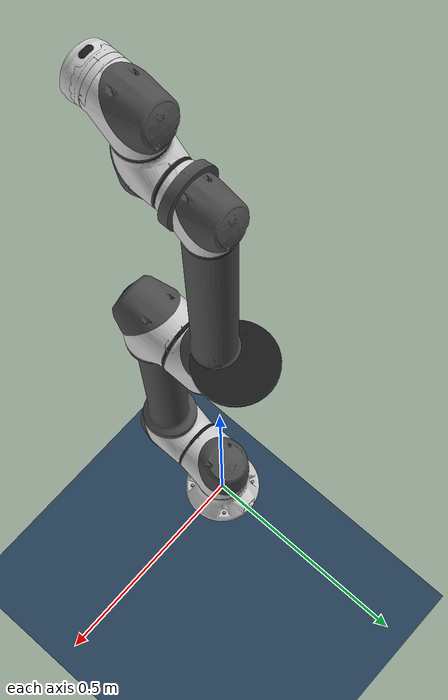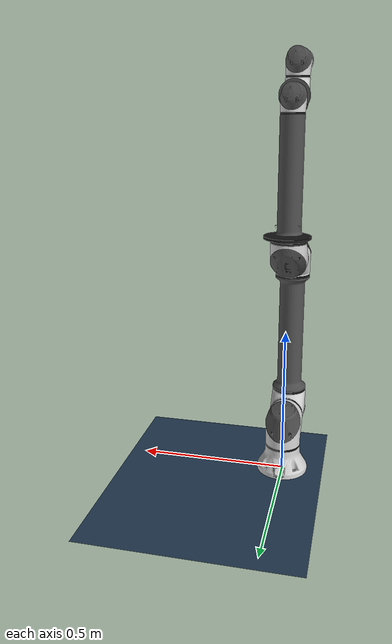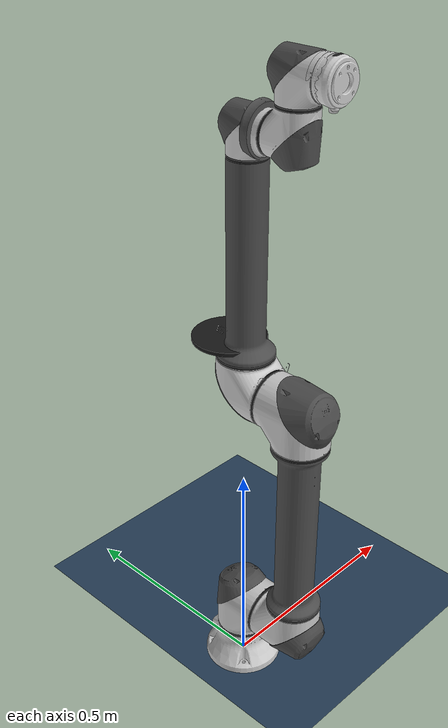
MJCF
<mujoco model="rb3_1200e">
  <compiler angle="radian" />
  <asset>
    <mesh name="link0" content_type="model/stl" file="../meshes/rb3_1200e/collision/link0.stl" />
    <mesh name="link1" content_type="model/stl" file="../meshes/rb3_1200e/collision/link1.stl" />
    <mesh name="link2" content_type="model/stl" file="../meshes/rb3_1200e/collision/link2.stl" />
    <mesh name="link3" content_type="model/stl" file="../meshes/rb3_1200e/collision/link3.stl" />
    <mesh name="link4" content_type="model/stl" file="../meshes/rb3_1200e/collision/link4.stl" />
    <mesh name="link5" content_type="model/stl" file="../meshes/rb3_1200e/collision/link5.stl" />
    <mesh name="link6" content_type="model/stl" file="../meshes/rb3_1200e/collision/link6.stl" />
    <texture type="skybox" builtin="gradient" rgb1="0.3 0.5 0.7" rgb2="0 0 0" width="512" height="3072" />
    <texture type="2d" name="groundplane" builtin="checker" mark="edge" rgb1="0.2 0.3 0.4" rgb2="0.1 0.2 0.3" markrgb="0.8 0.8 0.8" width="300" height="300" />
    <material name="groundplane" texture="groundplane" texuniform="true" texrepeat="5 5" reflectance="0.2" />
    <mesh name="link0_visual_0" file="../meshes/rb3_1200e/visual/link0_visual_0.obj" />
    <material name="link0_visual_0" rgba="0.8 0.8 0.8 1" specular="0"/>
    <mesh name="link0_visual_1" file="../meshes/rb3_1200e/visual/link0_visual_1.obj" />
    <material name="link0_visual_1" rgba="0.8 0.8 0.8 1" specular="0" />
    <mesh name="link1_visual_0" file="../meshes/rb3_1200e/visual/link1_visual_0.obj" />
    <material name="link1_visual_0" rgba="0.1 0.1 0.1 1" specular="0" />
    <mesh name="link1_visual_1" file="../meshes/rb3_1200e/visual/link1_visual_1.obj" />
    <material name="link1_visual_1" rgba="0.1 0.1 0.1 1" specular="0" />
    <mesh name="link1_visual_2" file="../meshes/rb3_1200e/visual/link1_visual_2.obj" />
    <material name="link1_visual_2" rgba="0.3 0.3 0.3 1" specular="0" />
    <mesh name="link1_visual_3" file="../meshes/rb3_1200e/visual/link1_visual_3.obj" />
    <material name="link1_visual_3" rgba="0.8 0.8 0.8 1" specular="0" />
    <mesh name="link1_visual_4" file="../meshes/rb3_1200e/visual/link1_visual_4.obj" />
    <material name="link1_visual_4" rgba="0.8 0.8 0.8 1" specular="0"/>
    <mesh name="link2_visual_0" file="../meshes/rb3_1200e/visual/link2_visual_0.obj" />
    <material name="link2_visual_0" rgba="0.3 0.3 0.3 1" specular="0" />
    <mesh name="link2_visual_1" file="../meshes/rb3_1200e/visual/link2_visual_1.obj" />
    <material name="link2_visual_1" rgba="0.8 0.8 0.8 1" specular="0"/>
    <mesh name="link2_visual_2" file="../meshes/rb3_1200e/visual/link2_visual_2.obj" />
    <material name="link2_visual_2" rgba="0.3 0.3 0.3 1" specular="0" />
    <mesh name="link2_visual_3" file="../meshes/rb3_1200e/visual/link2_visual_3.obj" />
    <material name="link2_visual_3" rgba="0.8 0.8 0.8 1" specular="0" />
    <mesh name="link2_visual_4" file="../meshes/rb3_1200e/visual/link2_visual_4.obj" />
    <material name="link2_visual_4" rgba="0.1 0.1 0.1 1" specular="0" />
    <mesh name="link2_visual_5" file="../meshes/rb3_1200e/visual/link2_visual_5.obj" />
    <material name="link2_visual_5" rgba="0.1 0.1 0.1 1" specular="0" />
    <mesh name="link3_visual_0" file="../meshes/rb3_1200e/visual/link3_visual_0.obj" />
    <material name="link3_visual_0" rgba="0.1 0.1 0.1 1" specular="0" />
    <mesh name="link3_visual_1" file="../meshes/rb3_1200e/visual/link3_visual_1.obj" />
    <material name="link3_visual_1" rgba="0.3 0.3 0.3 1" specular="0" />
    <mesh name="link3_visual_2" file="../meshes/rb3_1200e/visual/link3_visual_2.obj" />
    <material name="link3_visual_2" rgba="0.8 0.8 0.8 1" specular="0" />
    <mesh name="link3_visual_3" file="../meshes/rb3_1200e/visual/link3_visual_3.obj" />
    <material name="link3_visual_3" rgba="0.3 0.3 0.3 1" specular="0" />
    <mesh name="link3_visual_4" file="../meshes/rb3_1200e/visual/link3_visual_4.obj" />
    <material name="link3_visual_4" rgba="0.1 0.1 0.1 1" specular="0" />
    <mesh name="link3_visual_5" file="../meshes/rb3_1200e/visual/link3_visual_5.obj" />
    <material name="link3_visual_5" rgba="0.3 0.3 0.3 1" specular="0" />
    <mesh name="link3_visual_6" file="../meshes/rb3_1200e/visual/link3_visual_6.obj" />
    <material name="link3_visual_6" rgba="0.3 0.3 0.3 1" specular="0" />
    <mesh name="link3_visual_7" file="../meshes/rb3_1200e/visual/link3_visual_7.obj" />
    <material name="link3_visual_7" rgba="0.8 0.8 0.8 1" specular="0"/>
    <mesh name="link3_visual_8" file="../meshes/rb3_1200e/visual/link3_visual_8.obj" />
    <material name="link3_visual_8" rgba="0.8 0.8 0.8 1" specular="0" />
    <mesh name="link3_visual_9" file="../meshes/rb3_1200e/visual/link3_visual_9.obj" />
    <material name="link3_visual_9" rgba="0.3 0.3 0.3 1" specular="0" />
    <mesh name="link4_visual_0" file="../meshes/rb3_1200e/visual/link4_visual_0.obj" />
    <material name="link4_visual_0" rgba="0.1 0.1 0.1 1" specular="0" />
    <mesh name="link4_visual_1" file="../meshes/rb3_1200e/visual/link4_visual_1.obj" />
    <material name="link4_visual_1" rgba="0.3 0.3 0.3 1" specular="0" />
    <mesh name="link4_visual_2" file="../meshes/rb3_1200e/visual/link4_visual_2.obj" />
    <material name="link4_visual_2" rgba="0.3 0.3 0.3 1" specular="0" />
    <mesh name="link4_visual_3" file="../meshes/rb3_1200e/visual/link4_visual_3.obj" />
    <material name="link4_visual_3" rgba="0.8 0.8 0.8 1" specular="0" />
    <mesh name="link5_visual_0" file="../meshes/rb3_1200e/visual/link5_visual_0.obj" />
    <material name="link5_visual_0" rgba="0.1 0.1 0.1 1" specular="0" />
    <mesh name="link5_visual_1" file="../meshes/rb3_1200e/visual/link5_visual_1.obj" />
    <material name="link5_visual_1" rgba="0.3 0.3 0.3 1" specular="0" />
    <mesh name="link5_visual_2" file="../meshes/rb3_1200e/visual/link5_visual_2.obj" />
    <material name="link5_visual_2" rgba="0.3 0.3 0.3 1" specular="0" />
    <mesh name="link5_visual_3" file="../meshes/rb3_1200e/visual/link5_visual_3.obj" />
    <material name="link5_visual_3" rgba="0.8 0.8 0.8 1" specular="0" />
    <mesh name="link6_visual_0" file="../meshes/rb3_1200e/visual/link6_visual_0.obj" />
    <material name="link6_visual_0" rgba="0.8 0.8 0.8 1" specular="0" />
    <mesh name="link6_visual_1" file="../meshes/rb3_1200e/visual/link6_visual_1.obj" />
    <material name="link6_visual_1" rgba="0.8 0.8 0.8 1" specular="0" />
    <mesh name="link6_visual_2" file="../meshes/rb3_1200e/visual/link6_visual_2.obj" />
    <material name="link6_visual_2" rgba="0.8 0.8 0.8 1" specular="0" />
    <mesh name="link6_visual_3" file="../meshes/rb3_1200e/visual/link6_visual_3.obj" />
    <material name="link6_visual_3" rgba="0.1 0.1 0.1 1" specular="0" />
  </asset>
  <worldbody>
    <body name="link0" gravcomp="1">
      <geom type="mesh" mesh="link0" group="3" />
      <body name="link1" pos="0 0 0.1692" gravcomp="1">
        <inertial pos="0.00010026 -0.0554103 0.136046" quat="0.713598 0.0180534 -0.0170187 0.700115" mass="4.08789" diaginertia="0.0843129 0.0841908 0.00756524" />
        <joint name="base" pos="0 0 0" axis="0 0 1" range="-3.14 3.14" actuatorfrcrange="-10 10" />
        <geom type="mesh" mesh="link1" group="3" />
        <body name="link2" gravcomp="1">
          <inertial pos="-2.825e-05 -0.284553 -0.12024" quat="0.619708 0.784832 0.000410725 -0.000292643" mass="9.63917" diaginertia="1.60825 1.54464 0.0817718" />
          <joint name="shoulder" pos="0 0 0" axis="0 1 0" range="-3.14 3.14" actuatorfrcrange="-10 10" />
          <geom type="mesh" mesh="link2" group="3" />
          <body name="link3" pos="0 -0.1484 0.5669" gravcomp="1">
            <inertial pos="0.282606 1.346e-05 0.133694" quat="0.568179 0.42099 0.42113 0.56797" mass="3.99792" diaginertia="0.591666 0.564923 0.0338959" />
            <joint name="elbow" pos="0 0 0" axis="0 1 0" range="-3.14 3.14" actuatorfrcrange="-10 10" />
            <geom type="mesh" mesh="link3" group="3" />
            <body name="link4" pos="0 0.1484 0.5224" gravcomp="1">
              <inertial pos="0.0253436 1.725e-05 -0.106774" quat="0.705625 -0.0854346 -0.0864671 0.698081" mass="1.50852" diaginertia="0.0198321 0.019512 0.00153025" />
              <joint name="wrist1" pos="0 0 0" axis="0 1 0" range="-3.14 3.14" actuatorfrcrange="-10 10" />
              <geom type="mesh" mesh="link4" group="3" />
              <body name="link5" pos="0 -0.1107 0" gravcomp="1">
                <inertial pos="-1.725e-05 -0.0253436 0.106774" quat="0.99257 0.121553 -0.00073007 0.00533425" mass="1.50852" diaginertia="0.0198321 0.019512 0.00153025" />
                <joint name="wrist2" pos="0 0 0" axis="0 0 1" range="-3.14 3.14" actuatorfrcrange="-10 10" />
                <geom type="mesh" mesh="link5" group="3" />
                <body name="link6" pos="0 0 0.1107" gravcomp="1">
                  <inertial pos="-0.00022764 0.00061845 -0.0813745" quat="0.980395 0.00353859 0.00224495 -0.196996" mass="0.212002" diaginertia="0.00153075 0.001528 0.000215878" />
                  <joint name="wrist3" pos="0 0 0" axis="0 1 0" range="-3.14 3.14" actuatorfrcrange="-10 10" />
                  <geom type="mesh" mesh="link6" group="3" />
                  <body name="tcp" pos="0 -0.0967 0" gravcomp="1" />
                  <geom type="mesh" mesh="link6_visual_0" material="link6_visual_0" group="2" contype="0" conaffinity="0" density="0" />
                  <geom type="mesh" mesh="link6_visual_1" material="link6_visual_1" group="2" contype="0" conaffinity="0" density="0" />
                  <geom type="mesh" mesh="link6_visual_2" material="link6_visual_2" group="2" contype="0" conaffinity="0" density="0" />
                  <geom type="mesh" mesh="link6_visual_3" material="link6_visual_3" group="2" contype="0" conaffinity="0" density="0" />
                </body>
                <geom type="mesh" mesh="link5_visual_0" material="link5_visual_0" group="2" contype="0" conaffinity="0" density="0" />
                <geom type="mesh" mesh="link5_visual_1" material="link5_visual_1" group="2" contype="0" conaffinity="0" density="0" />
                <geom type="mesh" mesh="link5_visual_2" material="link5_visual_2" group="2" contype="0" conaffinity="0" density="0" />
                <geom type="mesh" mesh="link5_visual_3" material="link5_visual_3" group="2" contype="0" conaffinity="0" density="0" />
              </body>
              <geom type="mesh" mesh="link4_visual_0" material="link4_visual_0" group="2" contype="0" conaffinity="0" density="0" />
              <geom type="mesh" mesh="link4_visual_1" material="link4_visual_1" group="2" contype="0" conaffinity="0" density="0" />
              <geom type="mesh" mesh="link4_visual_2" material="link4_visual_2" group="2" contype="0" conaffinity="0" density="0" />
              <geom type="mesh" mesh="link4_visual_3" material="link4_visual_3" group="2" contype="0" conaffinity="0" density="0" />
            </body>
            <geom type="mesh" mesh="link3_visual_0" material="link3_visual_0" group="2" contype="0" conaffinity="0" density="0" />
            <geom type="mesh" mesh="link3_visual_1" material="link3_visual_1" group="2" contype="0" conaffinity="0" density="0" />
            <geom type="mesh" mesh="link3_visual_2" material="link3_visual_2" group="2" contype="0" conaffinity="0" density="0" />
            <geom type="mesh" mesh="link3_visual_3" material="link3_visual_3" group="2" contype="0" conaffinity="0" density="0" />
            <geom type="mesh" mesh="link3_visual_4" material="link3_visual_4" group="2" contype="0" conaffinity="0" density="0" />
            <geom type="mesh" mesh="link3_visual_5" material="link3_visual_5" group="2" contype="0" conaffinity="0" density="0" />
            <geom type="mesh" mesh="link3_visual_6" material="link3_visual_6" group="2" contype="0" conaffinity="0" density="0" />
            <geom type="mesh" mesh="link3_visual_7" material="link3_visual_7" group="2" contype="0" conaffinity="0" density="0" />
            <geom type="mesh" mesh="link3_visual_8" material="link3_visual_8" group="2" contype="0" conaffinity="0" density="0" />
            <geom type="mesh" mesh="link3_visual_9" material="link3_visual_9" group="2" contype="0" conaffinity="0" density="0" />
          </body>
          <geom type="mesh" mesh="link2_visual_0" material="link2_visual_0" group="2" contype="0" conaffinity="0" density="0" />
          <geom type="mesh" mesh="link2_visual_1" material="link2_visual_1" group="2" contype="0" conaffinity="0" density="0" />
          <geom type="mesh" mesh="link2_visual_2" material="link2_visual_2" group="2" contype="0" conaffinity="0" density="0" />
          <geom type="mesh" mesh="link2_visual_3" material="link2_visual_3" group="2" contype="0" conaffinity="0" density="0" />
          <geom type="mesh" mesh="link2_visual_4" material="link2_visual_4" group="2" contype="0" conaffinity="0" density="0" />
          <geom type="mesh" mesh="link2_visual_5" material="link2_visual_5" group="2" contype="0" conaffinity="0" density="0" />
        </body>
        <geom type="mesh" mesh="link1_visual_0" material="link1_visual_0" group="2" contype="0" conaffinity="0" density="0" />
        <geom type="mesh" mesh="link1_visual_1" material="link1_visual_1" group="2" contype="0" conaffinity="0" density="0" />
        <geom type="mesh" mesh="link1_visual_2" material="link1_visual_2" group="2" contype="0" conaffinity="0" density="0" />
        <geom type="mesh" mesh="link1_visual_3" material="link1_visual_3" group="2" contype="0" conaffinity="0" density="0" />
        <geom type="mesh" mesh="link1_visual_4" material="link1_visual_4" group="2" contype="0" conaffinity="0" density="0" />
      </body>
      <geom type="mesh" mesh="link0_visual_0" material="link0_visual_0" group="2" contype="0" conaffinity="0" density="0" />
      <geom type="mesh" mesh="link0_visual_1" material="link0_visual_1" group="2" contype="0" conaffinity="0" density="0" />
    </body>
    <light pos="0 0 4" dir="0 0 -1" directional="true" />
    <geom name="floor" type="plane" size="0 0 0.05" material="groundplane" />
  </worldbody>
  <option timestep="0.002" integrator="implicitfast" />
  <visual>
    <headlight diffuse="0.6 0.6 0.6" ambient="0.3 0.3 0.3" specular="0 0 0" />
    <rgba haze="0.15 0.25 0.35 1" />
    <global azimuth="140" elevation="-20" />
  </visual>
  <contact>
    <exclude body1="link0" body2="link1" />
  </contact>
  <statistic center="0 -0.068122867 0.70495725" extent="1.4538982" />
  <actuator>
    <position name="base" joint="base" kp="2000" kv="200" ctrlrange="-3.14 3.14" forcerange="-10 10" />
    <position name="shoulder" joint="shoulder" kp="2000" kv="200" ctrlrange="-3.14 3.14" forcerange="-10 10" />
    <position name="elbow" joint="elbow" kp="2000" kv="200" ctrlrange="-3.14 3.14" forcerange="-10 10" />
    <position name="wrist1" joint="wrist1" kp="2000" kv="200" ctrlrange="-3.14 3.14" forcerange="-10 10" />
    <position name="wrist2" joint="wrist2" kp="2000" kv="200" ctrlrange="-3.14 3.14" forcerange="-10 10" />
    <position name="wrist3" joint="wrist3" kp="2000" kv="200" ctrlrange="-3.14 3.14" forcerange="-10 10" />
  </actuator>
</mujoco>
